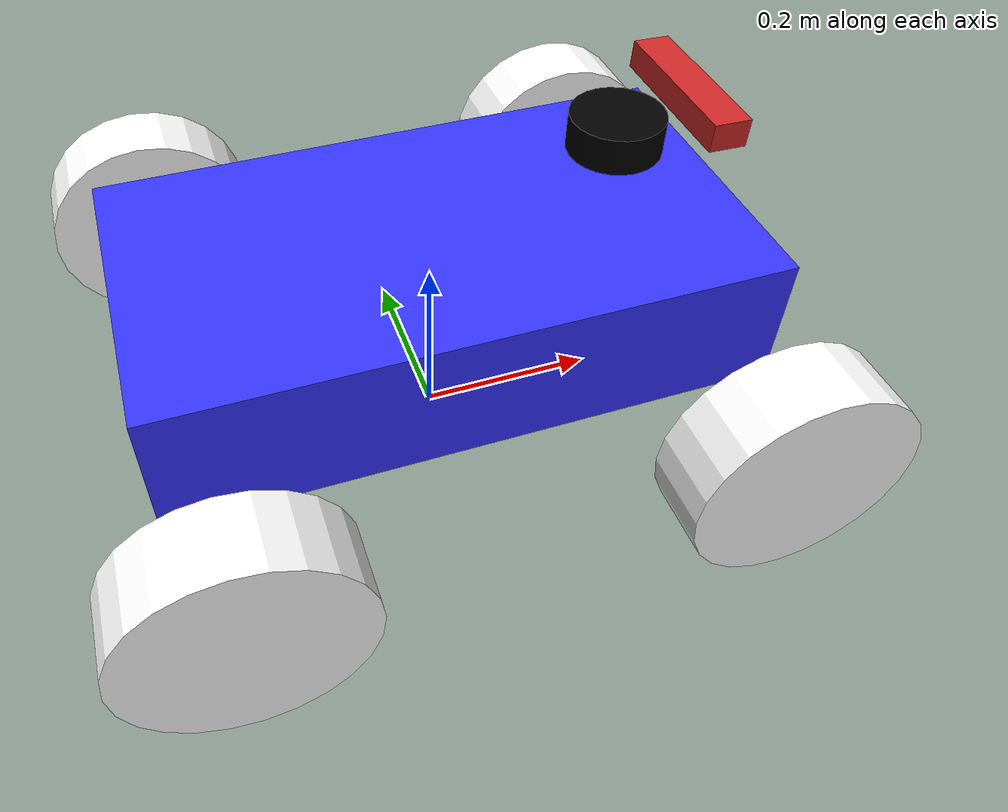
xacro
<?xml version="1.0"?>

<robot xmlns:xacro="http://www.ros.org/wiki/xacro" name="rosbot">

  <xacro:include filename="include.xacro" />

  <link name="base_footprint"/>

  <joint name="base_joint" type="fixed">
    <parent link="base_footprint"/>
    <child link="chasis"/>
    <origin xyz="0 0 0.19" />
  </joint>

  <!--Chasis-->
  <link name="chasis">
    <visual>
      <geometry>
        <box size="0.65 0.35 0.15"/>
      </geometry>
      <material name="blue"/>
    </visual>
    <collision>
      <geometry>
        <box size="0.65 0.35 0.15"/>
      </geometry>
    </collision>
    <xacro:inertial_box mass="35" x="0.65" y="0.35" z="0.15">
      <origin xyz="0 0 0" rpy="0 0 0"/>
    </xacro:inertial_box>
  </link>

  <!--Right-->

  <link name="right_wheel">
    <visual>
      <geometry>
         <cylinder length="0.08" radius="0.12"/>
      </geometry>
      <origin xyz="0 0 0"/>
      <material name="white"/>
    </visual>
    <collision>
      <origin xyz="0 0 0"/>
      <geometry>
        <cylinder length="0.08" radius="0.12"/>
      </geometry>
    </collision>
    <xacro:inertial_cylinder mass="1.0" length="0.08" radius="0.12">
      <origin xyz="0 0 0" rpy="0 0 0"/>
    </xacro:inertial_cylinder>
  </link>

  <joint name="joint_right_rear_wheel" type="continuous">
    <parent link="chasis"/>
    <child link="right_wheel"/>
    <origin xyz="-0.27 -0.295 -0.06" rpy="1.57 0 0"/>
    <axis xyz="0 0 1"/>
    <dynamics damping="0.0" friction="0.1"/>
  </joint>

 <!--Left -->

  <link name="left_wheel">
    <visual>
      <geometry>
         <cylinder length="0.08" radius="0.12"/>
      </geometry>
      <origin xyz="0 0 0"/>
      <material name="white"/>
    </visual>
    <collision>
      <origin xyz="0 0 0"/>
      <geometry>
        <cylinder length="0.08" radius="0.12"/>
      </geometry>
    </collision>
    <xacro:inertial_cylinder mass="1.0" length="0.08" radius="0.12">
      <origin xyz="0 0 0" rpy="0 0 0"/>
    </xacro:inertial_cylinder>
  </link>

  <joint name="joint_left_rear_wheel" type="continuous">
    <parent link="chasis"/>
    <child link="left_wheel"/>
    <origin xyz="-0.27 0.295 -0.06" rpy="1.57 0 0"/>
    <axis xyz="0 0 1"/>
    <dynamics damping="0.0" friction="0.1"/>
  </joint>

  <link name="master">
    <visual>
      <geometry>
        <box size="0.001 0.001 0.001"/>
      </geometry>
      <material name="blue"/>
    </visual>
    <collision>
      <geometry>
        <box size="0.001 0.001 0.001"/>
      </geometry>
    </collision>
    <xacro:inertial_box mass="0.001" x="0.01" y="00.1" z="0.01">
      <origin xyz="0 0 0" rpy="0 0 0"/>
    </xacro:inertial_box>
  </link>
  <joint name="master_joint" type="revolute">
    <parent link="chasis"/>
    <child link="master"/>
    <origin xyz="0.24 0 0" rpy= "1.57 0 0"/>
    <axis xyz="0 1 0"/>
    <limit effort="100" velocity="1" lower="-0.78" upper="0.78"/>
  </joint>

  <link name="right_wheel_front_assembly">
    <visual>
      <geometry>
        <cylinder length="0.001" radius="0.04"/>
      </geometry>
      <material name="white"/>
    </visual>
    <collision>
      <geometry>
        <cylinder length="0.001" radius="0.04"/>
      </geometry>
    </collision>
    <xacro:inertial_cylinder mass="1.0" length="0.001" radius="0.04">
      <origin xyz="0 0 0" rpy="0 0 0"/>
    </xacro:inertial_cylinder>
  </link>

  <link name="right_wheel_front">
    <visual>
      <geometry>
        <cylinder length="0.08" radius="0.12"/>
      </geometry>
      <material name="white"/>
    </visual>
    <collision>
      <geometry>
        <cylinder length="0.08" radius="0.12"/>
      </geometry>
    </collision>
    <xacro:inertial_cylinder mass="1.0" length="0.08" radius="0.12">
      <origin xyz="0 0 0" rpy="0 0 0"/>
    </xacro:inertial_cylinder>
  </link>

  <joint name="joint_right_wheel_front" type="revolute">
    <parent link="chasis"/>
    <child link="right_wheel_front_assembly"/>
    <origin xyz="0.27 -0.295 -0.06" rpy="1.57 0 0"/>
    <axis xyz="0 1 0"/>
    <dynamics damping="0.0" friction="0.1"/>
    <limit effort="100" velocity="1" lower="-0.78" upper="0.78"/>
  </joint>

  <joint name="right_wheel_joint" type="continuous">
    <parent link="right_wheel_front_assembly"/>
    <child link="right_wheel_front"/>
    <origin xyz="0.0 0 0" rpy="0 0 0"/>
    <axis xyz="0 0 1"/>
    <dynamics damping="0.0" friction="1"/>
    <limit effort="100" velocity="1"/>
  </joint>

  <link name="left_wheel_front_assembly">
    <visual>
      <geometry>
         <cylinder length="0.001" radius="0.04"/>
      </geometry>
      <origin xyz="0 0 0"/>
      <material name="white"/>
    </visual>
    <collision>
      <origin xyz="0 0 0"/>
      <geometry>
        <cylinder length="0.001" radius="0.04"/>
      </geometry>
    </collision>
    <xacro:inertial_cylinder mass="1.0" length="0.001" radius="0.04">
      <origin xyz="0 0 0" rpy="0 0 0"/>
    </xacro:inertial_cylinder>
  </link>
  <link name="left_wheel_front">
    <visual>
      <geometry>
        <cylinder length="0.08" radius="0.12"/>
      </geometry>
      <origin xyz="0 0 0"/>
      <material name="white"/>
    </visual>
    <collision>
      <origin xyz="0 0 0"/>
      <geometry>
        <cylinder length="0.08" radius="0.12"/>
      </geometry>
    </collision>
    <xacro:inertial_cylinder mass="1.0" length="0.08" radius="0.12">
      <origin xyz="0 0 0" rpy="0 0 0"/>
    </xacro:inertial_cylinder>
  </link>

  <joint name="joint_left_wheel_front" type="revolute">
    <parent link="chasis"/>
    <child link="left_wheel_front_assembly"/>
    <origin xyz="0.27 0.295 -0.06" rpy="1.57 0 0"/>
    <axis xyz="0 1 0"/>
    <limit effort="100" velocity="1" lower="-0.78" upper="0.78"/>
  </joint>

  <joint name="left_wheel_joint" type="continuous">
    <parent link="left_wheel_front_assembly"/>
    <child link="left_wheel_front"/>
    <origin xyz="0.0 0 0" rpy="0 0 0"/>
    <axis xyz="0 0 1"/>
    <dynamics damping="0.0" friction="1"/>
    <limit effort="100" velocity="1"/>
  </joint>

  <!--camara-->

  <joint name="camera_joint" type="fixed">
    <parent link="chasis"/>
    <child link="camera_link"/>
    <origin xyz="0.276 0 0.181" rpy="0 0.18 0"/>
  </joint>

  <link name="camera_link">
    <visual>
      <origin xyz="0 0 0" rpy="0 -0.156 0"/>
      <geometry>
        <box size="0.04 0.17 0.03"/>
      </geometry>
    </visual>
    <collision>
      <origin xyz="0 0 0" rpy="0 -0.156 0"/>
      <geometry>
        <box size="0.04 0.17 0.03"/>
      </geometry>
    </collision>
    <xacro:inertial_box mass="0.181" x="0.04" y="0.17" z="0.03">
      <origin xyz="0 0 0" rpy="0 -0.156 0"/>
    </xacro:inertial_box>
  </link>

  <joint name="camera_optical_joint" type="fixed">
    <parent link="camera_link"/>
    <child link="camera_link_optical"/>
    <origin xyz="0 0 0" rpy="-1.57 0 -1.57"/>
  </joint>

  <link name="camera_link_optical"></link>

  <!--lidar-->
  <joint name="laser_joint" type="fixed">
    <parent link="chasis"/>
    <child link="laser_frame"/>
    <origin xyz="0.2 0 0.15" rpy="0 0 0"/>
  </joint>

  <link name="laser_frame">
    <visual>
      <geometry>
        <cylinder radius="0.05" length="0.04"/>
      </geometry>
      <material name="black"/>
    </visual>
    <collision>
      <geometry>
        <cylinder radius="0.05" length="0.04"/>
      </geometry>
    </collision>
    <xacro:inertial_cylinder mass="0.3" length="0.04" radius="0.05">
        <origin xyz="0 0 0" rpy="0 0 0"/>
    </xacro:inertial_cylinder>
  </link>

  <xacro:include filename="gazebo.xacro"/>

</robot>

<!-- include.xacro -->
<robot xmlns:xacro="http://www.ros.org/wiki/xacro" >

    <!-- Especificación de colores -->
    <material name="white">
        <color rgba="1 1 1 1"/>
    </material>

    <material name="orange">
        <color rgba="1 0.3 0.1 1"/>
    </material>

    <material name="blue">
        <color rgba="0.2 0.2 1 1"/>
    </material>

    <material name="grey">
        <color rgba="0 0 0 1"/>
    </material>
    <material name="black">
        <color rgba="0.0 0.0 0.0 0.0"/>
    </material>

    <!-- Especificaciones de gazebo -->
    <gazebo reference="chasis">
        <material>Gazebo/Blue</material>
        <gravity>1</gravity>
    </gazebo>
    <gazebo reference="master">
        <material>Gazebo/Blue</material>
    </gazebo>
    <gazebo reference="lidar_link">
        <material>Gazebo/Black</material>
    </gazebo>
    <gazebo reference="right_wheel">
        <mu1 value="1.0"/>
        <mu2 value="1.0"/>
        <kp  value="10000000.0" />
        <kd  value="1.0" />
        <fdir1 value="1 0 0"/>
        <material>Gazebo/White</material>
        <gravity>1</gravity>
    </gazebo>
    <gazebo reference="left_wheel">
        <mu1 value="1.0"/>
        <mu2 value="1.0"/>
        <kp  value="10000000.0" />
        <kd  value="1.0" />
        <fdir1 value="1 0 0"/>
        <material>Gazebo/White</material>
        <gravity>1</gravity>
    </gazebo>
    <gazebo reference="right_wheel_front">
        <mu1 value="1.0"/>
        <mu2 value="1.0"/>
        <kp  value="10000000.0" />
        <kd  value="1.0" />
        <fdir1 value="0 0 1"/>
        <material>Gazebo/White</material>
        <gravity>1</gravity>
    </gazebo>
    <gazebo reference="left_wheel_front">
        <mu1 value="1.0"/>
        <mu2 value="1.0"/>
        <kp  value="10000000.0" />
        <kd  value="1.0" />
        <fdir1 value="0 0 1"/>
        <material>Gazebo/White</material>
        <gravity>1</gravity>
    </gazebo>

    <gazebo reference="camera_link">
        <material>Gazebo/Red</material>

        <sensor name="camera" type="depth">
            <pose> 0 0 0 0 0 0 </pose>
            <visualize>true</visualize>
            <update_rate>10</update_rate>
            <camera>
                <horizontal_fov>1.089</horizontal_fov>
                <image>
                    <format>B8G8R8</format>
                    <width>640</width>
                    <height>480</height>
                </image>
                <clip>
                    <near>0.05</near>
                    <far>8.0</far>
                </clip>
            </camera>
            <plugin name="camera_controller" filename="libgazebo_ros_camera.so">
                <frame_name>camera_link_optical</frame_name>
                <min_depth>0.1</min_depth>
                <max_depth>100.0</max_depth>
            </plugin>
        </sensor>
    </gazebo>

    <gazebo reference="laser_frame">
        <material>Gazebo/Black</material>

        <sensor name="laser" type="ray">
            <pose> 0 0 0 0 0 0 </pose>
            <visualize>true</visualize>
            <update_rate>10</update_rate>
            <ray>
                <scan>
                    <horizontal>
                        <samples>120</samples>
                        <min_angle>-3.1</min_angle>
                        <max_angle>3.1</max_angle>
                    </horizontal>
                </scan>
                <range>
                    <min>0.3</min>
                    <max>12</max>
                </range>
                <noise>
                    <type>gaussian</type>
                    <mean>0.0</mean>
                    <stddev>0.01</stddev>
                </noise>
            </ray>
            <plugin name="laser_controller" filename="libgazebo_ros_ray_sensor.so">
                <ros>
                    <argument>~/out:=scan</argument>
                </ros>
                <output_type>sensor_msgs/LaserScan</output_type>
                <frame_name>laser_frame</frame_name>
            </plugin>
        </sensor>
    </gazebo>

    <!-- Macro para calcular la inercia de un chasis rectangular -->
    <xacro:macro name="inertial_box" params="mass x y z *origin">
        <inertial>
            <xacro:insert_block name="origin"/>
            <mass value="${mass}" />
            <inertia ixx="${(1/12) * mass * (y*y+z*z)}" ixy="0.0" ixz="0.0"
                    iyy="${(1/12) * mass * (x*x+z*z)}" iyz="0.0"
                    izz="${(1/12) * mass * (x*x+y*y)}" />
        </inertial>
    </xacro:macro>

    <!-- Macro para calcular la inercia de una rueda cilíndrica -->
    <xacro:macro name="inertial_cylinder" params="mass length radius *origin">
        <inertial>
            <xacro:insert_block name="origin"/>
            <mass value="${mass}" />
            <inertia ixx="${mass*(3*radius*radius + length*length)/12}" ixy="0.0" ixz="0.0"
                    iyy="${mass*(3*radius*radius + length*length)/12}" iyz="0.0"
                    izz="${mass*(radius*radius)/2}" />
        </inertial>
    </xacro:macro>

</robot>
